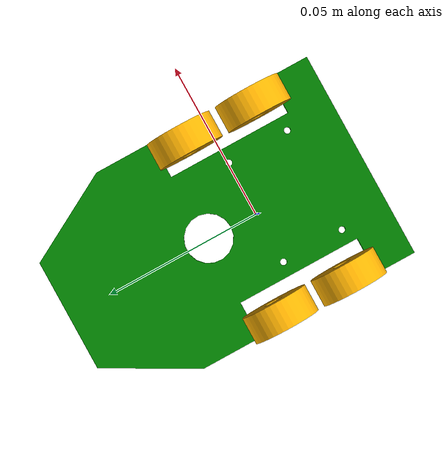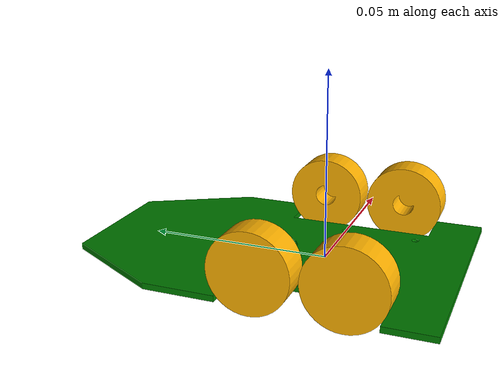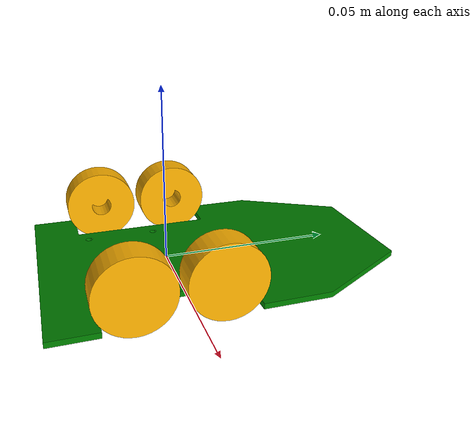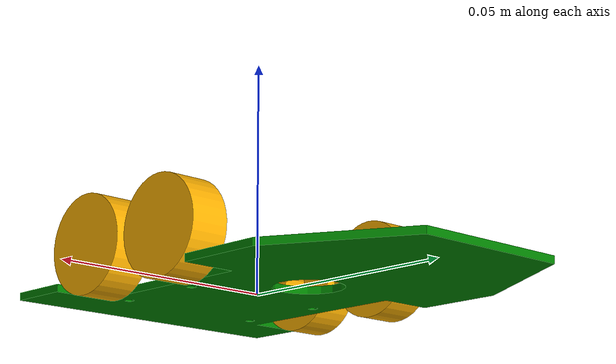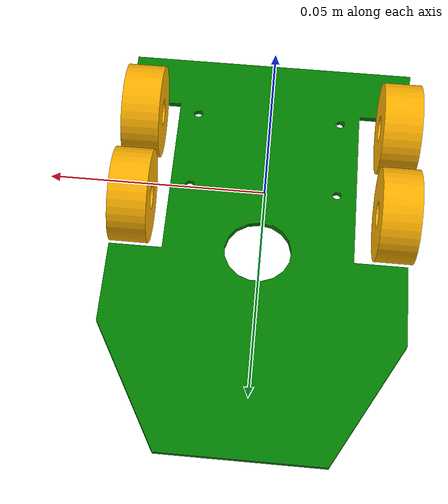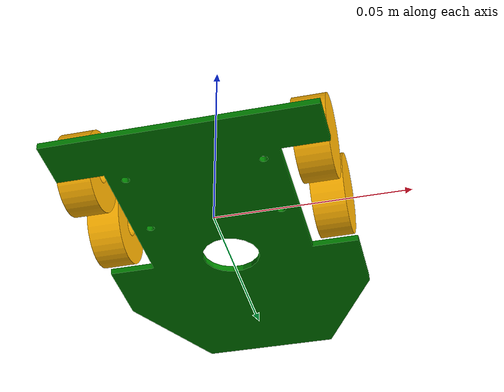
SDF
<?xml version="1.0" ?>
<sdf version="1.11">
	<model name="robot" canonical_link="base_link">
		<plugin filename="gz-sim-imu-system"
				name="gz::sim::systems::Imu">
		</plugin>
		<plugin filename="gz-sim-forcetorque-system"
				name="gz::sim::systems::ForceTorque">
		</plugin>
		<plugin filename="gz-sim-joint-state-publisher-system"
  				name="gz::sim::systems::JointStatePublisher">
			<topic>joint_state_left</topic>
			<joint_name>RLW_joint</joint_name>
		</plugin>
		<plugin filename="gz-sim-joint-state-publisher-system"
  				name="gz::sim::systems::JointStatePublisher">
			<topic>joint_state_right</topic>
			<joint_name>RRW_joint</joint_name>
		</plugin>
		<plugin filename="gz-sim-sensors-system"
				name="gz::sim::systems::Sensors">
			<render_engine>ogre2</render_engine>
		</plugin>
		<plugin filename="gz-sim-diff-drive-system"
				name="gz::sim::systems::DiffDrive">
			<left_joint>FLW_joint</left_joint>
			<left_joint>RLW_joint</left_joint>
			<right_joint>FRW_joint</right_joint>
			<right_joint>RRW_joint</right_joint>
			<wheel_separation>0.0585</wheel_separation>
			<wheel_radius>0.0105</wheel_radius>
			<topic>cmd_vel</topic>
			<odom_topic>odometry</odom_topic>
			<odom_publish_frequency>100</odom_publish_frequency>
			<min_linear_velocity>-10.0</min_linear_velocity>
			<max_linear_velocity>10.0</max_linear_velocity>
			<min_angular_velocity>-250.0</min_angular_velocity>
			<max_angular_velocity>250.0</max_angular_velocity>
			<min_linear_acceleration>-5.0</min_linear_acceleration>
			<max_linear_acceleration>5.0</max_linear_acceleration>
			<min_angular_acceleration>-100.0</min_angular_acceleration>
			<max_angular_acceleration>100.0</max_angular_acceleration>
		</plugin>
		<frame name="lidar0_frame" attached_to="base_link">
			<pose relative_to="base_link">-0.0285 0.03 0.005 0 0 1.57079632679489</pose>
		</frame>
		<frame name="lidar1_frame" attached_to="base_link">
			<pose relative_to="base_link">-0.017 0.062 0.005 0 0 2.35619449019234</pose>
		</frame>
		<frame name="lidar2_frame" attached_to="base_link">
			<pose relative_to="base_link">0.017 0.062 0.005 0 0 0.78539816339744</pose>
		</frame>
		<frame name="lidar3_frame" attached_to="base_link">
			<pose relative_to="base_link">0.0285 0.03 0.005 0 0 1.57079632679489</pose>
		</frame>
		<link name="base_link">
			<inertial>
				<mass>0.0825016710008052</mass>
				<inertia>
					<ixx>7.14350881728348E-05</ixx>
					<ixy>0</ixy>
					<ixz>0</ixz>
					<iyy>2.27281998078348E-05</iyy>
					<iyz>0</iyz>
					<izz>9.41280872677092E-05</izz>
				</inertia>
			</inertial>
			<visual name="base_vis">
				<pose relative_to="base_link">0 0.08 0.017 0 0 0</pose>
				<geometry>
					<mesh>
						<uri>model://meshes/base_link.stl</uri>
					</mesh>
				</geometry>
				<material>
					<ambient>0.0 0.5 0.0 1</ambient>
					<diffuse>0.0 0.5 0.0 1</diffuse>
					<specular>0.0 0.5 0.0 1</specular>
				</material>
			</visual>
			<collision name="base_coll">
				<pose relative_to="base_link">0 0.08 0.017 0 0 0</pose>
				<geometry>
					<mesh>
						<uri>model://meshes/base_link.stl</uri>
					</mesh>
				</geometry>
			</collision>
			<sensor name="imu_sensor" type="imu">
				<always_on>1</always_on>
				<update_rate>100</update_rate>
				<visualize>true</visualize>
				<topic>imu</topic>
			</sensor>
			<sensor name="gpu_lidar0" type="gpu_lidar">
				<pose relative_to="lidar0_frame">0 0 0 0 0 0</pose>
				<topic>lidar_0</topic>
				<update_rate>100</update_rate>
				<ray>
					<scan>
						<horizontal>
							<samples>1</samples>
							<resolution>1</resolution>
							<min_angle>0</min_angle>
							<max_angle>0</max_angle>
						</horizontal>
						<vertical>
							<samples>1</samples>
							<resolution>1</resolution>
							<min_angle>0</min_angle>
							<max_angle>0</max_angle>
						</vertical>
					</scan>
					<range>
						<min>0.0001</min>
						<max>0.3</max>
						<resolution>0.0001</resolution>
					</range>
				</ray>
				<always_on>1</always_on>
				<visualize>true</visualize>
			</sensor>
			<sensor name="gpu_lidar1" type="gpu_lidar">
				<pose relative_to="lidar1_frame">0 0 0 0 0 0</pose>
				<topic>lidar_1</topic>
				<update_rate>100</update_rate>
				<ray>
					<scan>
						<horizontal>
							<samples>1</samples>
							<resolution>1</resolution>
							<min_angle>0</min_angle>
							<max_angle>0</max_angle>
						</horizontal>
						<vertical>
							<samples>1</samples>
							<resolution>1</resolution>
							<min_angle>0</min_angle>
							<max_angle>0</max_angle>
						</vertical>
					</scan>
					<range>
						<min>0.0001</min>
						<max>0.3</max>
						<resolution>0.0001</resolution>
					</range>
				</ray>
				<always_on>1</always_on>
				<visualize>true</visualize>
			</sensor>
			<sensor name="gpu_lidar2" type="gpu_lidar">
				<pose relative_to="lidar2_frame">0 0 0 0 0 0</pose>
				<topic>lidar_2</topic>
				<update_rate>100</update_rate>
				<ray>
					<scan>
						<horizontal>
							<samples>1</samples>
							<resolution>1</resolution>
							<min_angle>0</min_angle>
							<max_angle>0</max_angle>
						</horizontal>
						<vertical>
							<samples>1</samples>
							<resolution>1</resolution>
							<min_angle>0</min_angle>
							<max_angle>0</max_angle>
						</vertical>
					</scan>
					<range>
						<min>0.0001</min>
						<max>0.3</max>
						<resolution>0.0001</resolution>
					</range>
				</ray>
				<always_on>1</always_on>
				<visualize>true</visualize>
			</sensor>
			<sensor name="gpu_lidar3" type="gpu_lidar">
				<pose relative_to="lidar3_frame">0 0 0 0 0 0</pose>
				<topic>lidar_3</topic>
				<update_rate>100</update_rate>
				<ray>
					<scan>
						<horizontal>
							<samples>1</samples>
							<resolution>1</resolution>
							<min_angle>0</min_angle>
							<max_angle>0</max_angle>
						</horizontal>
						<vertical>
							<samples>1</samples>
							<resolution>1</resolution>
							<min_angle>0</min_angle>
							<max_angle>0</max_angle>
						</vertical>
					</scan>
					<range>
						<min>0.0001</min>
						<max>0.3</max>
						<resolution>0.0001</resolution>
					</range>
				</ray>
				<always_on>1</always_on>
				<visualize>true</visualize>
			</sensor>
		</link>
		<link name="FLW_link">
			<pose relative_to="base_link">-0.02925 0.008 0.008 0 0 3.14159265359</pose>
			<inertial>
				<mass>0.00135156970824209</mass>
				<inertia>
					<ixx>8.00075362261772E-08</ixx>
					<ixy>0</ixy>
					<ixz>0</ixz>
					<iyy>4.82352157196683E-08</iyy>
					<iyz>0</iyz>
					<izz>4.82352157196683E-08</izz>
				</inertia>
			</inertial>
			<visual name="FLW_vis">
				<pose relative_to="FLW_link">-0.00425 0 0 0 0 3.14159265359</pose>
				<geometry>
					<mesh>
						<uri>model://meshes/wheel.stl</uri>
					</mesh>
				</geometry>
				<material>
					<ambient>1.0 0.7 0 1</ambient>
					<diffuse>1.0 0.7 0 1</diffuse>
					<specular>1.0 0.7 0 1</specular>
				</material>
			</visual>
			<collision name="FLW_coll">
				<pose relative_to="FLW_link">-0.00425 0 0 0 0 3.14159265359</pose>
				<geometry>
					<mesh>
						<uri>model://meshes/wheel.stl</uri>
					</mesh>
				</geometry>
				<surface>
					<friction>
						<ode>
							<mu>0.9</mu>
							<mu2>0.9</mu2>
						</ode>
						<bullet>
							<friction>0.9</friction>
							<friction2>0.9</friction2>
						</bullet>
					</friction>
				</surface>
			</collision>
		</link>
		<joint name="FLW_joint" type="revolute">
			<pose relative_to="FLW_link">0 0 0 0 0 0</pose>
			<parent>base_link</parent>
			<child>FLW_link</child>
			<axis>
				<xyz>1 0 0</xyz>
				<limit>
					<lower>-1.79769e+308</lower>
					<upper>1.79769e+308</upper>
					<effort>0.01</effort>
				</limit>
			</axis>
			<sensor name="FLW_torque" type="force_torque">
				<always_on>1</always_on>
				<update_rate>100</update_rate>
				<visualize>true</visualize>
				<topic>torque_flw</topic>
				<force_torque>
					<frame>child</frame>
					<measure_direction>parent_to_child</measure_direction>
				</force_torque>
			</sensor>
		</joint>
		<link name="RLW_link">
			<pose relative_to="base_link">-0.02925 -0.015 0.008 0 0 3.14159265359</pose>
			<inertial>
				<mass>0.00135156970824209</mass>
				<inertia>
					<ixx>8.00075362261772E-08</ixx>
					<ixy>0</ixy>
					<ixz>0</ixz>
					<iyy>4.82352157196683E-08</iyy>
					<iyz>0</iyz>
					<izz>4.82352157196683E-08</izz>
				</inertia>
			</inertial>
			<visual name="RLW_vis">
				<pose relative_to="RLW_link">-0.00425 0 0 0 0 3.14159265359</pose>
				<geometry>
					<mesh>
						<uri>model://meshes/wheel.stl</uri>
					</mesh>
				</geometry>
				<material>
					<ambient>1.0 0.7 0 1</ambient>
					<diffuse>1.0 0.7 0 1</diffuse>
					<specular>1.0 0.7 0 1</specular>
				</material>
			</visual>
			<collision name="RLW_coll">
				<pose relative_to="RLW_link">-0.00425 0 0 0 0 3.14159265359</pose>
				<geometry>
					<mesh>
						<uri>model://meshes/wheel.stl</uri>
					</mesh>
				</geometry>
				<surface>
					<friction>
						<ode>
							<mu>0.9</mu>
							<mu2>0.9</mu2>
						</ode>
						<bullet>
							<friction>0.9</friction>
							<friction2>0.9</friction2>
						</bullet>
					</friction>
				</surface>
			</collision>
		</link>
		<joint name="RLW_joint" type="revolute">
			<pose relative_to="RLW_link">0 0 0 0 0 0</pose>
			<parent>base_link</parent>
			<child>RLW_link</child>
			<axis>
				<xyz>1 0 0</xyz>
				<limit>
					<lower>-1.79769e+308</lower>
					<upper>1.79769e+308</upper>
					<effort>0.01</effort>
				</limit>
			</axis>
			<sensor name="RLW_torque" type="force_torque">
				<always_on>1</always_on>
				<update_rate>100</update_rate>
				<visualize>true</visualize>
				<topic>torque_rlw</topic>
				<force_torque>
					<frame>child</frame>
					<measure_direction>parent_to_child</measure_direction>
				</force_torque>
			</sensor>
		</joint>
		<link name="FRW_link">
			<pose relative_to="base_link">0.02925 0.008 0.008 0 0 3.14159265359</pose>
			<inertial>
				<mass>0.00135156970824209</mass>
				<inertia>
					<ixx>8.00075362261772E-08</ixx>
					<ixy>0</ixy>
					<ixz>0</ixz>
					<iyy>4.82352157196683E-08</iyy>
					<iyz>0</iyz>
					<izz>4.82352157196683E-08</izz>
				</inertia>
			</inertial>
			<visual name="FRW_vis">
				<pose relative_to="FRW_link">0.00425 0 0 0 0 0</pose>
				<geometry>
					<mesh>
						<uri>model://meshes/wheel.stl</uri>
					</mesh>
				</geometry>
				<material>
					<ambient>1.0 0.7 0 1</ambient>
					<diffuse>1.0 0.7 0 1</diffuse>
					<specular>1.0 0.7 0 1</specular>
				</material>
			</visual>
			<collision name="FRW_coll">
				<pose relative_to="FRW_link">0.00425 0 0 0 0 0</pose>
				<geometry>
					<mesh>
						<uri>model://meshes/wheel.stl</uri>
					</mesh>
				</geometry>
				<surface>
					<friction>
						<ode>
							<mu>0.9</mu>
							<mu2>0.9</mu2>
						</ode>
						<bullet>
							<friction>0.9</friction>
							<friction2>0.9</friction2>
						</bullet>
					</friction>
				</surface>
			</collision>
		</link>
		<joint name="FRW_joint" type="revolute">
			<pose relative_to="FRW_link">0 0 0 0 0 0</pose>
			<parent>base_link</parent>
			<child>FRW_link</child>
			<axis>
				<xyz>1 0 0</xyz>
				<limit>
					<lower>-1.79769e+308</lower>
					<upper>1.79769e+308</upper>
					<effort>0.01</effort>
				</limit>
			</axis>
			<sensor name="FRW_torque" type="force_torque">
				<always_on>1</always_on>
				<update_rate>100</update_rate>
				<visualize>true</visualize>
				<topic>torque_frw</topic>
				<force_torque>
					<frame>child</frame>
					<measure_direction>parent_to_child</measure_direction>
				</force_torque>
			</sensor>
		</joint>
		<link name="RRW_link">
			<pose relative_to="base_link">0.02925 -0.015 0.008 0 0 3.14159265359</pose>
			<inertial>
				<mass>0.00135156970824209</mass>
				<inertia>
					<ixx>8.00075362261772E-08</ixx>
					<ixy>0</ixy>
					<ixz>0</ixz>
					<iyy>4.82352157196683E-08</iyy>
					<iyz>0</iyz>
					<izz>4.82352157196683E-08</izz>
				</inertia>
			</inertial>
			<visual name="RRW_vis">
				<pose relative_to="RRW_link">0.00425 0 0 0 0 0</pose>
				<geometry>
					<mesh>
						<uri>model://meshes/wheel.stl</uri>
					</mesh>
				</geometry>
				<material>
					<ambient>1.0 0.7 0 1</ambient>
					<diffuse>1.0 0.7 0 1</diffuse>
					<specular>1.0 0.7 0 1</specular>
				</material>
			</visual>
			<collision name="RRW_coll">
				<pose relative_to="RRW_link">0.00425 0 0 0 0 0</pose>
				<geometry>
					<mesh>
						<uri>model://meshes/wheel.stl</uri>
					</mesh>
				</geometry>
				<surface>
					<friction>
						<ode>
							<mu>0.9</mu>
							<mu2>0.9</mu2>
						</ode>
						<bullet>
							<friction>0.9</friction>
							<friction2>0.9</friction2>
						</bullet>
					</friction>
				</surface>
			</collision>
		</link>
		<joint name="RRW_joint" type="revolute">
			<pose relative_to="RRW_link">0 0 0 0 0 0</pose>
			<parent>base_link</parent>
			<child>RRW_link</child>
			<axis>
				<xyz>1 0 0</xyz>
				<limit>
					<lower>-1.79769e+308</lower>
					<upper>1.79769e+308</upper>
					<effort>0.01</effort>
				</limit>
			</axis>
			<sensor name="RRW_torque" type="force_torque">
				<always_on>1</always_on>
				<update_rate>100</update_rate>
				<visualize>true</visualize>
				<topic>torque_rrw</topic>
				<force_torque>
					<frame>child</frame>
					<measure_direction>parent_to_child</measure_direction>
				</force_torque>
			</sensor>
		</joint>
	</model>
</sdf>
